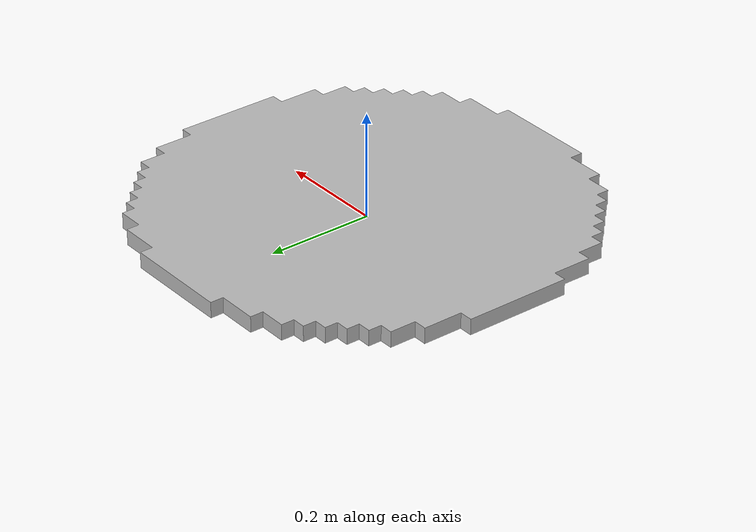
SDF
<?xml version="1.0"?>
<sdf version="1.6">
  <model name="rgo2015/bar_table/top">
    <link name="1_link">
      <collision name="1_col">
        <geometry>
          <mesh>
            <uri>model://rgo2015/bar_table/top/shape/top.stl</uri>
          </mesh>
        </geometry>
      </collision>
      <visual name="1_vis">
        <geometry>
          <mesh>
            <uri>model://rgo2015/bar_table/top/shape/top.stl</uri>
          </mesh>
        </geometry>
      </visual>
      <pose>0 0 0 0 0 0</pose>
    </link>
    <static>true</static>
  </model>
</sdf>
